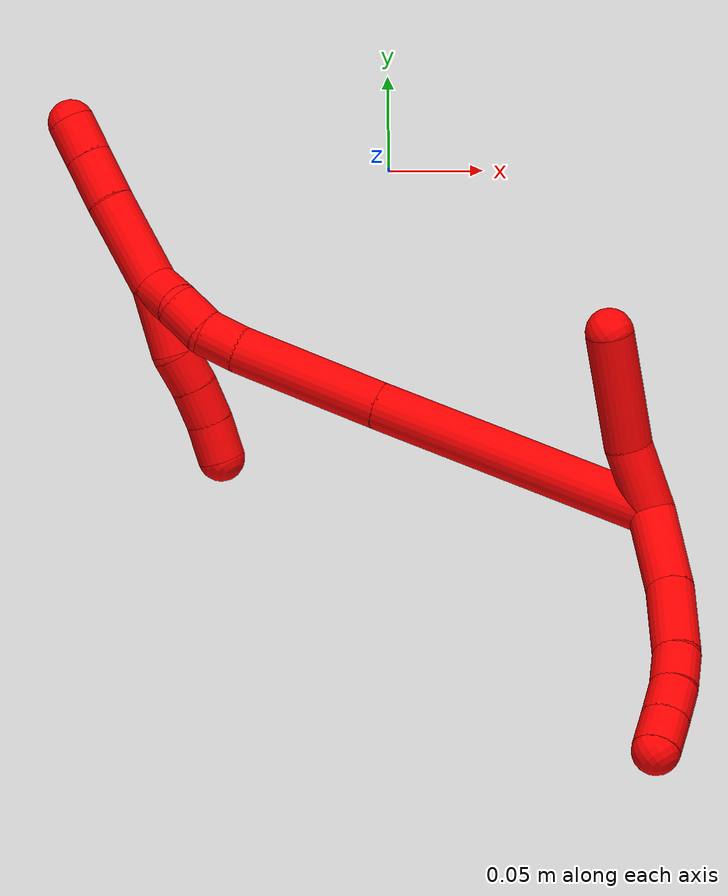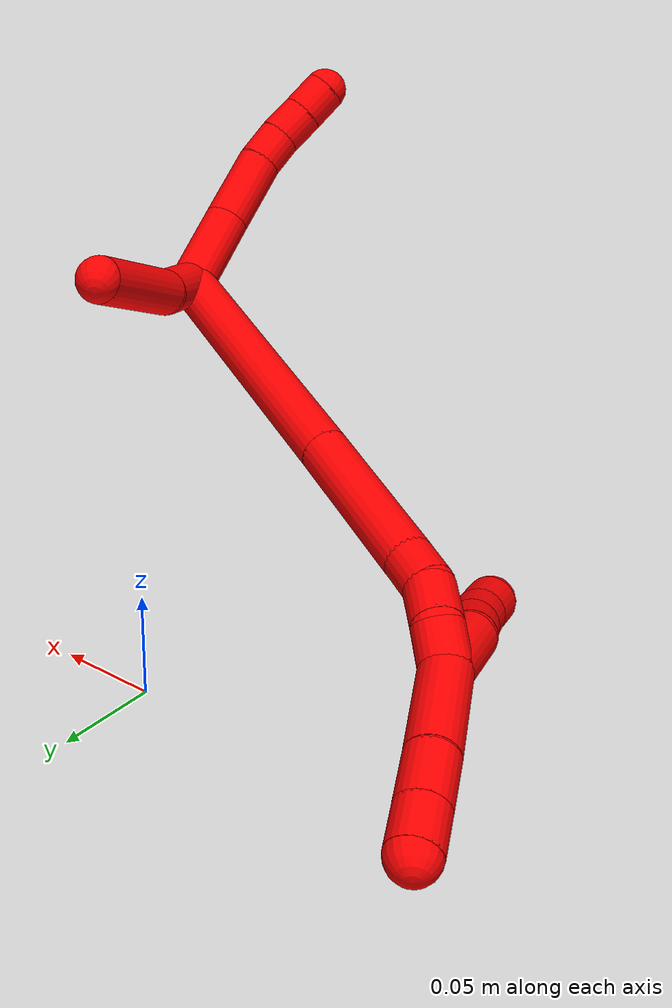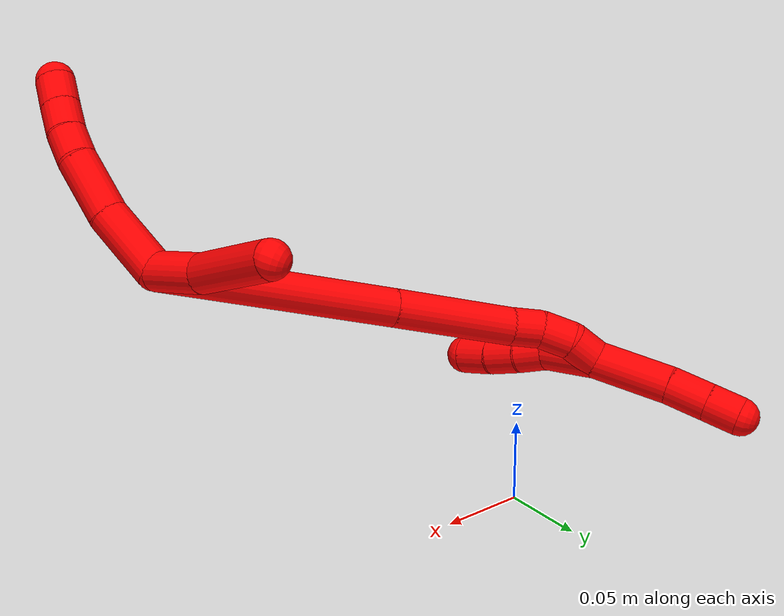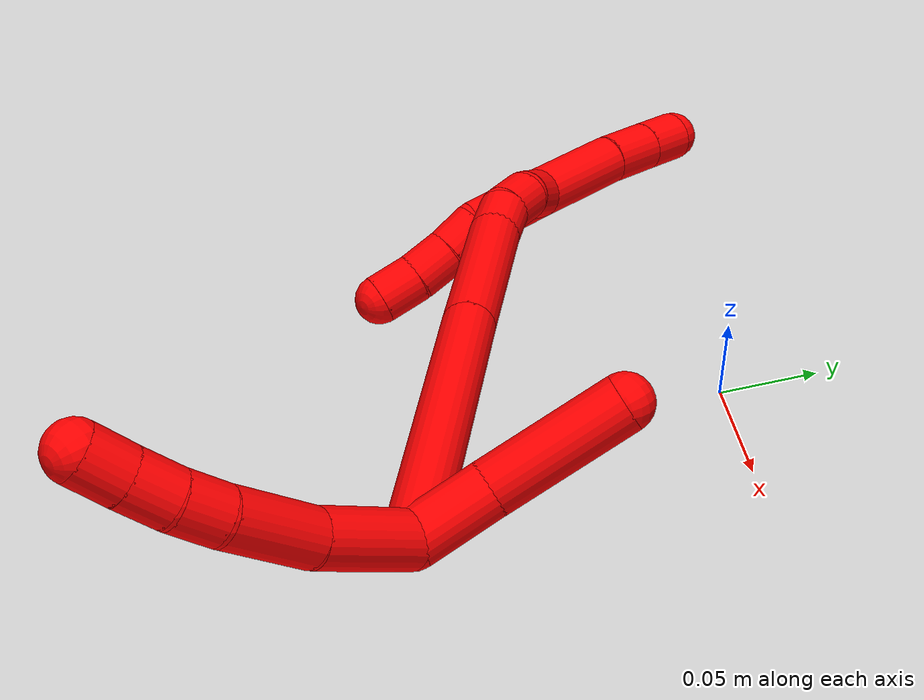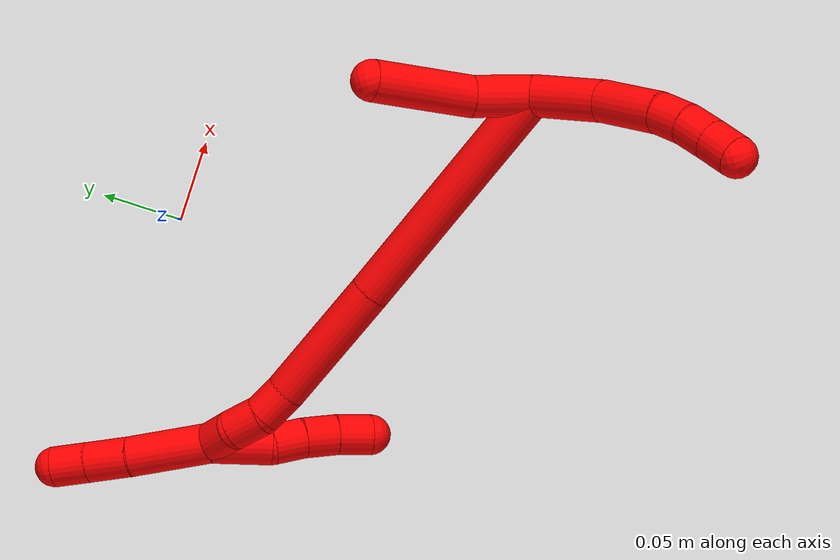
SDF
<sdf version="1.7">
 <world name="default">
  <model name="photoneo_s_sensor">
   <static>1</static>
   <pose>0 0 2 1.57079 1.57079 3.14159</pose>
   <link name="link">
    <inertial><mass>0.1</mass></inertial>
    <sensor name="sensor" type="depth">
     <update_rate>30</update_rate>
     <camera>
      <horizontal_fov>1.22</horizontal_fov>
      <image><width>1920</width><height>1200</height><format>B8G8R8</format></image>
      <clip><near>0.1</near><far>4</far></clip>
      <depth_camera><output>points</output></depth_camera>
     </camera>
     <plugin name="camera_plugin" filename="libgazebo_ros_depth_camera.so">
      <baseline>0.2</baseline>
      <alwaysOn>1</alwaysOn>
      <updateRate>0.0</updateRate>
      <cameraName>camera_ir</cameraName>
      <imageTopicName>/camera/color/image_raw</imageTopicName>
      <cameraInfoTopicName>/camera/color/camera_info</cameraInfoTopicName>
      <depthImageTopicName>/camera/depth/image_raw</depthImageTopicName>
      <depthImageCameraInfoTopicName>/camera/depth/camera_info</depthImageCameraInfoTopicName>
      <pointCloudTopicName>/camera/depth/points</pointCloudTopicName>
      <frameName>fr_optical</frameName>
      <pointCloudCutoff>0.1</pointCloudCutoff>
      <pointCloudCutoffMax>2.0</pointCloudCutoffMax>
      <distortionK1>0</distortionK1>
      <distortionK2>0</distortionK2>
      <distortionK3>0</distortionK3>
      <distortionT1>0</distortionT1>
      <distortionT2>0</distortionT2>
      <CxPrime>0</CxPrime>
      <Cx>0</Cx>
      <Cy>0</Cy>
      <focalLength>0</focalLength>
      <hackBaseline>0</hackBaseline>
     </plugin>
    </sensor>
   </link>
  </model>
  <model name="bin">
   <static>1</static>
   <link name="bottom">
    <collision name="collision-bottom">
     <pose>0 0 -0.01 0 -0 0</pose>
     <geometry><box><size>0.8 0.6 0.02</size></box></geometry>
     <surface>
      <friction><ode><mu>100</mu><mu2>100</mu2></ode></friction>
      <contact><collide_bitmask>65535</collide_bitmask></contact>
     </surface>
    </collision>
   </link>
   <link name="west_wall">
    <collision name="collision-west_wall">
     <pose>-0.41 0 0.1 0 -0 0</pose>
     <geometry><box><size>0.02 0.6 0.2</size></box></geometry>
     <surface>
      <friction><ode><mu>100</mu><mu2>100</mu2></ode></friction>
      <contact><collide_bitmask>65535</collide_bitmask></contact>
     </surface>
    </collision>
   </link>
   <link name="east_wall">
    <collision name="collision-east_wall">
     <pose>0.41 0 0.1 0 -0 0</pose>
     <geometry><box><size>0.02 0.6 0.2</size></box></geometry>
     <surface>
      <friction><ode><mu>100</mu><mu2>100</mu2></ode></friction>
      <contact><collide_bitmask>65535</collide_bitmask></contact>
     </surface>
    </collision>
   </link>
   <link name="south_wall">
    <collision name="collision-south_wall">
     <pose>0 -0.31 0.1 0 -0 0</pose>
     <geometry><box><size>0.8 0.02 0.2</size></box></geometry>
     <surface>
      <friction><ode><mu>100</mu><mu2>100</mu2></ode></friction>
      <contact><collide_bitmask>65535</collide_bitmask></contact>
     </surface>
    </collision>
   </link>
   <link name="north_wall">
    <collision name="collision-north_wall">
     <pose>0 0.31 0.1 0 -0 0</pose>
     <geometry><box><size>0.8 0.02 0.2</size></box></geometry>
     <surface>
      <friction><ode><mu>100</mu><mu2>100</mu2></ode></friction>
      <contact><collide_bitmask>65535</collide_bitmask></contact>
     </surface>
    </collision>
   </link>
  </model>
  <model name="2">
   <static>0</static>
   <link name="2">
    <collision name="collision-cylinder-e_1_2_8">
     <pose>0.004451 0.009796 0.021256 -0.431851 0.187938 -0.041339</pose>
     <geometry><cylinder><radius>0.0125</radius><length>0.047648</length></cylinder></geometry>
     <surface>
      <friction><ode><mu>1.16</mu><mu2>1.16</mu2><slip1>0</slip1><slip2>0</slip2></ode></friction>
      <contact><ode><kp>1e+06</kp><kd>1</kd><max_vel>0</max_vel><min_depth>0.001</min_depth></ode></contact>
     </surface>
    </collision>
    <visual name="visual-cylinder-e_1_2_8">
     <pose>0.004451 0.009796 0.021256 -0.431851 0.187938 -0.041339</pose>
     <geometry><cylinder><radius>0.0125</radius><length>0.047648</length></cylinder></geometry>
     <material><ambient>1 0 0 1</ambient></material>
    </visual>
    <collision name="collision-cylinder-e_2_8_9">
     <pose>0.014962 0.030632 0.059323 -0.581054 0.292666 -0.088076</pose>
     <geometry><cylinder><radius>0.0125</radius><length>0.042011</length></cylinder></geometry>
     <surface>
      <friction><ode><mu>1.16</mu><mu2>1.16</mu2><slip1>0</slip1><slip2>0</slip2></ode></friction>
      <contact><ode><kp>1e+06</kp><kd>1</kd><max_vel>0</max_vel><min_depth>0.001</min_depth></ode></contact>
     </surface>
    </collision>
    <visual name="visual-cylinder-e_2_8_9">
     <pose>0.014962 0.030632 0.059323 -0.581054 0.292666 -0.088076</pose>
     <geometry><cylinder><radius>0.0125</radius><length>0.042011</length></cylinder></geometry>
     <material><ambient>1 0 0 1</ambient></material>
    </visual>
    <collision name="collision-cylinder-e_3_9_10">
     <pose>0.023215 0.048253 0.083519 -0.727992 0.218092 -0.08337</pose>
     <geometry><cylinder><radius>0.0125</radius><length>0.020263</length></cylinder></geometry>
     <surface>
      <friction><ode><mu>1.16</mu><mu2>1.16</mu2><slip1>0</slip1><slip2>0</slip2></ode></friction>
      <contact><ode><kp>1e+06</kp><kd>1</kd><max_vel>0</max_vel><min_depth>0.001</min_depth></ode></contact>
     </surface>
    </collision>
    <visual name="visual-cylinder-e_3_9_10">
     <pose>0.023215 0.048253 0.083519 -0.727992 0.218092 -0.08337</pose>
     <geometry><cylinder><radius>0.0125</radius><length>0.020263</length></cylinder></geometry>
     <material><ambient>1 0 0 1</ambient></material>
    </visual>
    <collision name="collision-cylinder-e_4_10_11">
     <pose>0.027251 0.062351 0.097275 -0.867625 0.18503 -0.085906</pose>
     <geometry><cylinder><radius>0.0125</radius><length>0.02005</length></cylinder></geometry>
     <surface>
      <friction><ode><mu>1.16</mu><mu2>1.16</mu2><slip1>0</slip1><slip2>0</slip2></ode></friction>
      <contact><ode><kp>1e+06</kp><kd>1</kd><max_vel>0</max_vel><min_depth>0.001</min_depth></ode></contact>
     </surface>
    </collision>
    <visual name="visual-cylinder-e_4_10_11">
     <pose>0.027251 0.062351 0.097275 -0.867625 0.18503 -0.085906</pose>
     <geometry><cylinder><radius>0.0125</radius><length>0.02005</length></cylinder></geometry>
     <material><ambient>1 0 0 1</ambient></material>
    </visual>
    <collision name="collision-cylinder-e_5_11_6">
     <pose>0.031268 0.077457 0.109808 -0.888867 0.218681 -0.104459</pose>
     <geometry><cylinder><radius>0.0125</radius><length>0.020028</length></cylinder></geometry>
     <surface>
      <friction><ode><mu>1.16</mu><mu2>1.16</mu2><slip1>0</slip1><slip2>0</slip2></ode></friction>
      <contact><ode><kp>1e+06</kp><kd>1</kd><max_vel>0</max_vel><min_depth>0.001</min_depth></ode></contact>
     </surface>
    </collision>
    <visual name="visual-cylinder-e_5_11_6">
     <pose>0.031268 0.077457 0.109808 -0.888867 0.218681 -0.104459</pose>
     <geometry><cylinder><radius>0.0125</radius><length>0.020028</length></cylinder></geometry>
     <material><ambient>1 0 0 1</ambient></material>
    </visual>
    <collision name="collision-cylinder-e_1_2_12">
     <pose>0.008736 -0.001209 -0.016018 3.06629 0.498101 2.84749</pose>
     <geometry><cylinder><radius>0.0125</radius><length>0.03657</length></cylinder></geometry>
     <surface>
      <friction><ode><mu>1.16</mu><mu2>1.16</mu2><slip1>0</slip1><slip2>0</slip2></ode></friction>
      <contact><ode><kp>1e+06</kp><kd>1</kd><max_vel>0</max_vel><min_depth>0.001</min_depth></ode></contact>
     </surface>
    </collision>
    <visual name="visual-cylinder-e_1_2_12">
     <pose>0.008736 -0.001209 -0.016018 3.06629 0.498101 2.84749</pose>
     <geometry><cylinder><radius>0.0125</radius><length>0.03657</length></cylinder></geometry>
     <material><ambient>1 0 0 1</ambient></material>
    </visual>
    <collision name="collision-cylinder-e_2_12_5">
     <pose>0.039264 -0.006105 -0.05478 2.98085 0.757551 2.74222</pose>
     <geometry><cylinder><radius>0.0125</radius><length>0.06343</length></cylinder></geometry>
     <surface>
      <friction><ode><mu>1.16</mu><mu2>1.16</mu2><slip1>0</slip1><slip2>0</slip2></ode></friction>
      <contact><ode><kp>1e+06</kp><kd>1</kd><max_vel>0</max_vel><min_depth>0.001</min_depth></ode></contact>
     </surface>
    </collision>
    <visual name="visual-cylinder-e_2_12_5">
     <pose>0.039264 -0.006105 -0.05478 2.98085 0.757551 2.74222</pose>
     <geometry><cylinder><radius>0.0125</radius><length>0.06343</length></cylinder></geometry>
     <material><ambient>1 0 0 1</ambient></material>
    </visual>
    <collision name="collision-cylinder-e_1_2_13">
     <pose>-0.020335 0.037858 -0.064446 -2.61046 -0.265634 0.913173</pose>
     <geometry><cylinder><radius>0.0125</radius><length>0.154919</length></cylinder></geometry>
     <surface>
      <friction><ode><mu>1.16</mu><mu2>1.16</mu2><slip1>0</slip1><slip2>0</slip2></ode></friction>
      <contact><ode><kp>1e+06</kp><kd>1</kd><max_vel>0</max_vel><min_depth>0.001</min_depth></ode></contact>
     </surface>
    </collision>
    <visual name="visual-cylinder-e_1_2_13">
     <pose>-0.020335 0.037858 -0.064446 -2.61046 -0.265634 0.913173</pose>
     <geometry><cylinder><radius>0.0125</radius><length>0.154919</length></cylinder></geometry>
     <material><ambient>1 0 0 1</ambient></material>
    </visual>
    <collision name="collision-cylinder-e_2_13_14">
     <pose>-0.051206 0.095306 -0.163108 -2.62163 -0.261144 0.917156</pose>
     <geometry><cylinder><radius>0.0125</radius><length>0.081622</length></cylinder></geometry>
     <surface>
      <friction><ode><mu>1.16</mu><mu2>1.16</mu2><slip1>0</slip1><slip2>0</slip2></ode></friction>
      <contact><ode><kp>1e+06</kp><kd>1</kd><max_vel>0</max_vel><min_depth>0.001</min_depth></ode></contact>
     </surface>
    </collision>
    <visual name="visual-cylinder-e_2_13_14">
     <pose>-0.051206 0.095306 -0.163108 -2.62163 -0.261144 0.917156</pose>
     <geometry><cylinder><radius>0.0125</radius><length>0.081622</length></cylinder></geometry>
     <material><ambient>1 0 0 1</ambient></material>
    </visual>
    <collision name="collision-cylinder-e_3_14_15">
     <pose>-0.063221 0.119757 -0.206449 -2.65199 -0.141974 0.554618</pose>
     <geometry><cylinder><radius>0.0125</radius><length>0.020888</length></cylinder></geometry>
     <surface>
      <friction><ode><mu>1.16</mu><mu2>1.16</mu2><slip1>0</slip1><slip2>0</slip2></ode></friction>
      <contact><ode><kp>1e+06</kp><kd>1</kd><max_vel>0</max_vel><min_depth>0.001</min_depth></ode></contact>
     </surface>
    </collision>
    <visual name="visual-cylinder-e_3_14_15">
     <pose>-0.063221 0.119757 -0.206449 -2.65199 -0.141974 0.554618</pose>
     <geometry><cylinder><radius>0.0125</radius><length>0.020888</length></cylinder></geometry>
     <material><ambient>1 0 0 1</ambient></material>
    </visual>
    <collision name="collision-cylinder-e_4_15_16">
     <pose>-0.066332 0.126269 -0.22618 -2.98728 -0.15098 1.54889</pose>
     <geometry><cylinder><radius>0.0125</radius><length>0.021716</length></cylinder></geometry>
     <surface>
      <friction><ode><mu>1.16</mu><mu2>1.16</mu2><slip1>0</slip1><slip2>0</slip2></ode></friction>
      <contact><ode><kp>1e+06</kp><kd>1</kd><max_vel>0</max_vel><min_depth>0.001</min_depth></ode></contact>
     </surface>
    </collision>
    <visual name="visual-cylinder-e_4_15_16">
     <pose>-0.066332 0.126269 -0.22618 -2.98728 -0.15098 1.54889</pose>
     <geometry><cylinder><radius>0.0125</radius><length>0.021716</length></cylinder></geometry>
     <material><ambient>1 0 0 1</ambient></material>
    </visual>
    <collision name="collision-cylinder-e_5_16_1">
     <pose>-0.072819 0.128352 -0.246006 -3.09462 -0.484228 2.9519</pose>
     <geometry><cylinder><radius>0.0125</radius><length>0.020855</length></cylinder></geometry>
     <surface>
      <friction><ode><mu>1.16</mu><mu2>1.16</mu2><slip1>0</slip1><slip2>0</slip2></ode></friction>
      <contact><ode><kp>1e+06</kp><kd>1</kd><max_vel>0</max_vel><min_depth>0.001</min_depth></ode></contact>
     </surface>
    </collision>
    <visual name="visual-cylinder-e_5_16_1">
     <pose>-0.072819 0.128352 -0.246006 -3.09462 -0.484228 2.9519</pose>
     <geometry><cylinder><radius>0.0125</radius><length>0.020855</length></cylinder></geometry>
     <material><ambient>1 0 0 1</ambient></material>
    </visual>
    <collision name="collision-cylinder-e_1_1_17">
     <pose>-0.085833 0.131496 -0.238682 -0.162397 -0.453005 0.037504</pose>
     <geometry><cylinder><radius>0.0125</radius><length>0.037286</length></cylinder></geometry>
     <surface>
      <friction><ode><mu>1.16</mu><mu2>1.16</mu2><slip1>0</slip1><slip2>0</slip2></ode></friction>
      <contact><ode><kp>1e+06</kp><kd>1</kd><max_vel>0</max_vel><min_depth>0.001</min_depth></ode></contact>
     </surface>
    </collision>
    <visual name="visual-cylinder-e_1_1_17">
     <pose>-0.085833 0.131496 -0.238682 -0.162397 -0.453005 0.037504</pose>
     <geometry><cylinder><radius>0.0125</radius><length>0.037286</length></cylinder></geometry>
     <material><ambient>1 0 0 1</ambient></material>
    </visual>
    <collision name="collision-cylinder-e_2_17_18">
     <pose>-0.099132 0.132853 -0.21353 0.155846 -0.532828 -0.042611</pose>
     <geometry><cylinder><radius>0.0125</radius><length>0.020235</length></cylinder></geometry>
     <surface>
      <friction><ode><mu>1.16</mu><mu2>1.16</mu2><slip1>0</slip1><slip2>0</slip2></ode></friction>
      <contact><ode><kp>1e+06</kp><kd>1</kd><max_vel>0</max_vel><min_depth>0.001</min_depth></ode></contact>
     </surface>
    </collision>
    <visual name="visual-cylinder-e_2_17_18">
     <pose>-0.099132 0.132853 -0.21353 0.155846 -0.532828 -0.042611</pose>
     <geometry><cylinder><radius>0.0125</radius><length>0.020235</length></cylinder></geometry>
     <material><ambient>1 0 0 1</ambient></material>
    </visual>
    <collision name="collision-cylinder-e_3_18_19">
     <pose>-0.109905 0.131208 -0.196054 0.03303 -0.565767 -0.009602</pose>
     <geometry><cylinder><radius>0.0125</radius><length>0.021018</length></cylinder></geometry>
     <surface>
      <friction><ode><mu>1.16</mu><mu2>1.16</mu2><slip1>0</slip1><slip2>0</slip2></ode></friction>
      <contact><ode><kp>1e+06</kp><kd>1</kd><max_vel>0</max_vel><min_depth>0.001</min_depth></ode></contact>
     </surface>
    </collision>
    <visual name="visual-cylinder-e_3_18_19">
     <pose>-0.109905 0.131208 -0.196054 0.03303 -0.565767 -0.009602</pose>
     <geometry><cylinder><radius>0.0125</radius><length>0.021018</length></cylinder></geometry>
     <material><ambient>1 0 0 1</ambient></material>
    </visual>
    <collision name="collision-cylinder-e_4_19_4">
     <pose>-0.121065 0.131811 -0.178033 -0.09765 -0.540992 0.027097</pose>
     <geometry><cylinder><radius>0.0125</radius><length>0.02146</length></cylinder></geometry>
     <surface>
      <friction><ode><mu>1.16</mu><mu2>1.16</mu2><slip1>0</slip1><slip2>0</slip2></ode></friction>
      <contact><ode><kp>1e+06</kp><kd>1</kd><max_vel>0</max_vel><min_depth>0.001</min_depth></ode></contact>
     </surface>
    </collision>
    <visual name="visual-cylinder-e_4_19_4">
     <pose>-0.121065 0.131811 -0.178033 -0.09765 -0.540992 0.027097</pose>
     <geometry><cylinder><radius>0.0125</radius><length>0.02146</length></cylinder></geometry>
     <material><ambient>1 0 0 1</ambient></material>
    </visual>
    <collision name="collision-cylinder-e_1_1_20">
     <pose>-0.07478 0.127458 -0.280551 3.08923 0.113611 2.27848</pose>
     <geometry><cylinder><radius>0.0125</radius><length>0.051052</length></cylinder></geometry>
     <surface>
      <friction><ode><mu>1.16</mu><mu2>1.16</mu2><slip1>0</slip1><slip2>0</slip2></ode></friction>
      <contact><ode><kp>1e+06</kp><kd>1</kd><max_vel>0</max_vel><min_depth>0.001</min_depth></ode></contact>
     </surface>
    </collision>
    <visual name="visual-cylinder-e_1_1_20">
     <pose>-0.07478 0.127458 -0.280551 3.08923 0.113611 2.27848</pose>
     <geometry><cylinder><radius>0.0125</radius><length>0.051052</length></cylinder></geometry>
     <material><ambient>1 0 0 1</ambient></material>
    </visual>
    <collision name="collision-cylinder-e_2_20_21">
     <pose>-0.071154 0.124712 -0.319197 3.03544 0.054588 0.949398</pose>
     <geometry><cylinder><radius>0.0125</radius><length>0.026829</length></cylinder></geometry>
     <surface>
      <friction><ode><mu>1.16</mu><mu2>1.16</mu2><slip1>0</slip1><slip2>0</slip2></ode></friction>
      <contact><ode><kp>1e+06</kp><kd>1</kd><max_vel>0</max_vel><min_depth>0.001</min_depth></ode></contact>
     </surface>
    </collision>
    <visual name="visual-cylinder-e_2_20_21">
     <pose>-0.071154 0.124712 -0.319197 3.03544 0.054588 0.949398</pose>
     <geometry><cylinder><radius>0.0125</radius><length>0.026829</length></cylinder></geometry>
     <material><ambient>1 0 0 1</ambient></material>
    </visual>
    <collision name="collision-cylinder-e_3_21_3">
     <pose>-0.069823 0.122063 -0.34349 3.03004 0.054158 0.903332</pose>
     <geometry><cylinder><radius>0.0125</radius><length>0.022119</length></cylinder></geometry>
     <surface>
      <friction><ode><mu>1.16</mu><mu2>1.16</mu2><slip1>0</slip1><slip2>0</slip2></ode></friction>
      <contact><ode><kp>1e+06</kp><kd>1</kd><max_vel>0</max_vel><min_depth>0.001</min_depth></ode></contact>
     </surface>
    </collision>
    <visual name="visual-cylinder-e_3_21_3">
     <pose>-0.069823 0.122063 -0.34349 3.03004 0.054158 0.903332</pose>
     <geometry><cylinder><radius>0.0125</radius><length>0.022119</length></cylinder></geometry>
     <material><ambient>1 0 0 1</ambient></material>
    </visual>
    <collision name="collision-sphere-3">
     <pose>-0.069225 0.120834 -0.354465 0 -0 0</pose>
     <geometry><sphere><radius>0.0125</radius></sphere></geometry>
     <surface>
      <friction><ode><mu>1.16</mu><mu2>1.16</mu2><slip1>0</slip1><slip2>0</slip2></ode></friction>
      <contact><ode><kp>1e+06</kp><kd>1</kd><max_vel>0</max_vel><min_depth>0.001</min_depth></ode></contact>
     </surface>
    </collision>
    <visual name="visual-sphere-3">
     <pose>-0.069225 0.120834 -0.354465 0 -0 0</pose>
     <geometry><sphere><radius>0.0125</radius></sphere></geometry>
     <material><ambient>1 0 0 1</ambient></material>
    </visual>
    <collision name="collision-sphere-21">
     <pose>-0.070422 0.123293 -0.332516 0 -0 0</pose>
     <geometry><sphere><radius>0.0125</radius></sphere></geometry>
     <surface>
      <friction><ode><mu>1.16</mu><mu2>1.16</mu2><slip1>0</slip1><slip2>0</slip2></ode></friction>
      <contact><ode><kp>1e+06</kp><kd>1</kd><max_vel>0</max_vel><min_depth>0.001</min_depth></ode></contact>
     </surface>
    </collision>
    <visual name="visual-sphere-21">
     <pose>-0.070422 0.123293 -0.332516 0 -0 0</pose>
     <geometry><sphere><radius>0.0125</radius></sphere></geometry>
     <material><ambient>1 0 0 1</ambient></material>
    </visual>
    <collision name="collision-sphere-20">
     <pose>-0.071886 0.126131 -0.305878 0 -0 0</pose>
     <geometry><sphere><radius>0.0125</radius></sphere></geometry>
     <surface>
      <friction><ode><mu>1.16</mu><mu2>1.16</mu2><slip1>0</slip1><slip2>0</slip2></ode></friction>
      <contact><ode><kp>1e+06</kp><kd>1</kd><max_vel>0</max_vel><min_depth>0.001</min_depth></ode></contact>
     </surface>
    </collision>
    <visual name="visual-sphere-20">
     <pose>-0.071886 0.126131 -0.305878 0 -0 0</pose>
     <geometry><sphere><radius>0.0125</radius></sphere></geometry>
     <material><ambient>1 0 0 1</ambient></material>
    </visual>
    <collision name="collision-sphere-4">
     <pose>-0.12659 0.132708 -0.168879 0 -0 0</pose>
     <geometry><sphere><radius>0.0125</radius></sphere></geometry>
     <surface>
      <friction><ode><mu>1.16</mu><mu2>1.16</mu2><slip1>0</slip1><slip2>0</slip2></ode></friction>
      <contact><ode><kp>1e+06</kp><kd>1</kd><max_vel>0</max_vel><min_depth>0.001</min_depth></ode></contact>
     </surface>
    </collision>
    <visual name="visual-sphere-4">
     <pose>-0.12659 0.132708 -0.168879 0 -0 0</pose>
     <geometry><sphere><radius>0.0125</radius></sphere></geometry>
     <material><ambient>1 0 0 1</ambient></material>
    </visual>
    <collision name="collision-sphere-6">
     <pose>0.033441 0.085046 0.11597 0 -0 0</pose>
     <geometry><sphere><radius>0.0125</radius></sphere></geometry>
     <surface>
      <friction><ode><mu>1.16</mu><mu2>1.16</mu2><slip1>0</slip1><slip2>0</slip2></ode></friction>
      <contact><ode><kp>1e+06</kp><kd>1</kd><max_vel>0</max_vel><min_depth>0.001</min_depth></ode></contact>
     </surface>
    </collision>
    <visual name="visual-sphere-6">
     <pose>0.033441 0.085046 0.11597 0 -0 0</pose>
     <geometry><sphere><radius>0.0125</radius></sphere></geometry>
     <material><ambient>1 0 0 1</ambient></material>
    </visual>
    <collision name="collision-sphere-11">
     <pose>0.029096 0.069868 0.103647 0 -0 0</pose>
     <geometry><sphere><radius>0.0125</radius></sphere></geometry>
     <surface>
      <friction><ode><mu>1.16</mu><mu2>1.16</mu2><slip1>0</slip1><slip2>0</slip2></ode></friction>
      <contact><ode><kp>1e+06</kp><kd>1</kd><max_vel>0</max_vel><min_depth>0.001</min_depth></ode></contact>
     </surface>
    </collision>
    <visual name="visual-sphere-11">
     <pose>0.029096 0.069868 0.103647 0 -0 0</pose>
     <geometry><sphere><radius>0.0125</radius></sphere></geometry>
     <material><ambient>1 0 0 1</ambient></material>
    </visual>
    <collision name="collision-sphere-10">
     <pose>0.025407 0.054834 0.090903 0 -0 0</pose>
     <geometry><sphere><radius>0.0125</radius></sphere></geometry>
     <surface>
      <friction><ode><mu>1.16</mu><mu2>1.16</mu2><slip1>0</slip1><slip2>0</slip2></ode></friction>
      <contact><ode><kp>1e+06</kp><kd>1</kd><max_vel>0</max_vel><min_depth>0.001</min_depth></ode></contact>
     </surface>
    </collision>
    <visual name="visual-sphere-10">
     <pose>0.025407 0.054834 0.090903 0 -0 0</pose>
     <geometry><sphere><radius>0.0125</radius></sphere></geometry>
     <material><ambient>1 0 0 1</ambient></material>
    </visual>
    <collision name="collision-sphere-9">
     <pose>0.021023 0.041672 0.076135 0 -0 0</pose>
     <geometry><sphere><radius>0.0125</radius></sphere></geometry>
     <surface>
      <friction><ode><mu>1.16</mu><mu2>1.16</mu2><slip1>0</slip1><slip2>0</slip2></ode></friction>
      <contact><ode><kp>1e+06</kp><kd>1</kd><max_vel>0</max_vel><min_depth>0.001</min_depth></ode></contact>
     </surface>
    </collision>
    <visual name="visual-sphere-9">
     <pose>0.021023 0.041672 0.076135 0 -0 0</pose>
     <geometry><sphere><radius>0.0125</radius></sphere></geometry>
     <material><ambient>1 0 0 1</ambient></material>
    </visual>
    <collision name="collision-sphere-2">
     <geometry><sphere><radius>0.0125</radius></sphere></geometry>
     <surface>
      <friction><ode><mu>1.16</mu><mu2>1.16</mu2><slip1>0</slip1><slip2>0</slip2></ode></friction>
      <contact><ode><kp>1e+06</kp><kd>1</kd><max_vel>0</max_vel><min_depth>0.001</min_depth></ode></contact>
     </surface>
    </collision>
    <visual name="visual-sphere-2">
     <geometry><sphere><radius>0.0125</radius></sphere></geometry>
     <material><ambient>1 0 0 1</ambient></material>
    </visual>
    <collision name="collision-sphere-19">
     <pose>-0.115539 0.130915 -0.187187 0 -0 0</pose>
     <geometry><sphere><radius>0.0125</radius></sphere></geometry>
     <surface>
      <friction><ode><mu>1.16</mu><mu2>1.16</mu2><slip1>0</slip1><slip2>0</slip2></ode></friction>
      <contact><ode><kp>1e+06</kp><kd>1</kd><max_vel>0</max_vel><min_depth>0.001</min_depth></ode></contact>
     </surface>
    </collision>
    <visual name="visual-sphere-19">
     <pose>-0.115539 0.130915 -0.187187 0 -0 0</pose>
     <geometry><sphere><radius>0.0125</radius></sphere></geometry>
     <material><ambient>1 0 0 1</ambient></material>
    </visual>
    <collision name="collision-sphere-8">
     <pose>0.008902 0.019592 0.042511 0 -0 0</pose>
     <geometry><sphere><radius>0.0125</radius></sphere></geometry>
     <surface>
      <friction><ode><mu>1.16</mu><mu2>1.16</mu2><slip1>0</slip1><slip2>0</slip2></ode></friction>
      <contact><ode><kp>1e+06</kp><kd>1</kd><max_vel>0</max_vel><min_depth>0.001</min_depth></ode></contact>
     </surface>
    </collision>
    <visual name="visual-sphere-8">
     <pose>0.008902 0.019592 0.042511 0 -0 0</pose>
     <geometry><sphere><radius>0.0125</radius></sphere></geometry>
     <material><ambient>1 0 0 1</ambient></material>
    </visual>
    <collision name="collision-sphere-12">
     <pose>0.017472 -0.002417 -0.032035 0 -0 0</pose>
     <geometry><sphere><radius>0.0125</radius></sphere></geometry>
     <surface>
      <friction><ode><mu>1.16</mu><mu2>1.16</mu2><slip1>0</slip1><slip2>0</slip2></ode></friction>
      <contact><ode><kp>1e+06</kp><kd>1</kd><max_vel>0</max_vel><min_depth>0.001</min_depth></ode></contact>
     </surface>
    </collision>
    <visual name="visual-sphere-12">
     <pose>0.017472 -0.002417 -0.032035 0 -0 0</pose>
     <geometry><sphere><radius>0.0125</radius></sphere></geometry>
     <material><ambient>1 0 0 1</ambient></material>
    </visual>
    <collision name="collision-sphere-5">
     <pose>0.061057 -0.009793 -0.077525 0 -0 0</pose>
     <geometry><sphere><radius>0.0125</radius></sphere></geometry>
     <surface>
      <friction><ode><mu>1.16</mu><mu2>1.16</mu2><slip1>0</slip1><slip2>0</slip2></ode></friction>
      <contact><ode><kp>1e+06</kp><kd>1</kd><max_vel>0</max_vel><min_depth>0.001</min_depth></ode></contact>
     </surface>
    </collision>
    <visual name="visual-sphere-5">
     <pose>0.061057 -0.009793 -0.077525 0 -0 0</pose>
     <geometry><sphere><radius>0.0125</radius></sphere></geometry>
     <material><ambient>1 0 0 1</ambient></material>
    </visual>
    <collision name="collision-sphere-13">
     <pose>-0.04067 0.075716 -0.128891 0 -0 0</pose>
     <geometry><sphere><radius>0.0125</radius></sphere></geometry>
     <surface>
      <friction><ode><mu>1.16</mu><mu2>1.16</mu2><slip1>0</slip1><slip2>0</slip2></ode></friction>
      <contact><ode><kp>1e+06</kp><kd>1</kd><max_vel>0</max_vel><min_depth>0.001</min_depth></ode></contact>
     </surface>
    </collision>
    <visual name="visual-sphere-13">
     <pose>-0.04067 0.075716 -0.128891 0 -0 0</pose>
     <geometry><sphere><radius>0.0125</radius></sphere></geometry>
     <material><ambient>1 0 0 1</ambient></material>
    </visual>
    <collision name="collision-sphere-14">
     <pose>-0.061743 0.114895 -0.197325 0 -0 0</pose>
     <geometry><sphere><radius>0.0125</radius></sphere></geometry>
     <surface>
      <friction><ode><mu>1.16</mu><mu2>1.16</mu2><slip1>0</slip1><slip2>0</slip2></ode></friction>
      <contact><ode><kp>1e+06</kp><kd>1</kd><max_vel>0</max_vel><min_depth>0.001</min_depth></ode></contact>
     </surface>
    </collision>
    <visual name="visual-sphere-14">
     <pose>-0.061743 0.114895 -0.197325 0 -0 0</pose>
     <geometry><sphere><radius>0.0125</radius></sphere></geometry>
     <material><ambient>1 0 0 1</ambient></material>
    </visual>
    <collision name="collision-sphere-15">
     <pose>-0.064699 0.124619 -0.215573 0 -0 0</pose>
     <geometry><sphere><radius>0.0125</radius></sphere></geometry>
     <surface>
      <friction><ode><mu>1.16</mu><mu2>1.16</mu2><slip1>0</slip1><slip2>0</slip2></ode></friction>
      <contact><ode><kp>1e+06</kp><kd>1</kd><max_vel>0</max_vel><min_depth>0.001</min_depth></ode></contact>
     </surface>
    </collision>
    <visual name="visual-sphere-15">
     <pose>-0.064699 0.124619 -0.215573 0 -0 0</pose>
     <geometry><sphere><radius>0.0125</radius></sphere></geometry>
     <material><ambient>1 0 0 1</ambient></material>
    </visual>
    <collision name="collision-sphere-16">
     <pose>-0.067965 0.127919 -0.236787 0 -0 0</pose>
     <geometry><sphere><radius>0.0125</radius></sphere></geometry>
     <surface>
      <friction><ode><mu>1.16</mu><mu2>1.16</mu2><slip1>0</slip1><slip2>0</slip2></ode></friction>
      <contact><ode><kp>1e+06</kp><kd>1</kd><max_vel>0</max_vel><min_depth>0.001</min_depth></ode></contact>
     </surface>
    </collision>
    <visual name="visual-sphere-16">
     <pose>-0.067965 0.127919 -0.236787 0 -0 0</pose>
     <geometry><sphere><radius>0.0125</radius></sphere></geometry>
     <material><ambient>1 0 0 1</ambient></material>
    </visual>
    <collision name="collision-sphere-1">
     <pose>-0.077673 0.128786 -0.255224 0 -0 0</pose>
     <geometry><sphere><radius>0.0125</radius></sphere></geometry>
     <surface>
      <friction><ode><mu>1.16</mu><mu2>1.16</mu2><slip1>0</slip1><slip2>0</slip2></ode></friction>
      <contact><ode><kp>1e+06</kp><kd>1</kd><max_vel>0</max_vel><min_depth>0.001</min_depth></ode></contact>
     </surface>
    </collision>
    <visual name="visual-sphere-1">
     <pose>-0.077673 0.128786 -0.255224 0 -0 0</pose>
     <geometry><sphere><radius>0.0125</radius></sphere></geometry>
     <material><ambient>1 0 0 1</ambient></material>
    </visual>
    <collision name="collision-sphere-18">
     <pose>-0.104271 0.131501 -0.204921 0 -0 0</pose>
     <geometry><sphere><radius>0.0125</radius></sphere></geometry>
     <surface>
      <friction><ode><mu>1.16</mu><mu2>1.16</mu2><slip1>0</slip1><slip2>0</slip2></ode></friction>
      <contact><ode><kp>1e+06</kp><kd>1</kd><max_vel>0</max_vel><min_depth>0.001</min_depth></ode></contact>
     </surface>
    </collision>
    <visual name="visual-sphere-18">
     <pose>-0.104271 0.131501 -0.204921 0 -0 0</pose>
     <geometry><sphere><radius>0.0125</radius></sphere></geometry>
     <material><ambient>1 0 0 1</ambient></material>
    </visual>
    <collision name="collision-sphere-17">
     <pose>-0.093992 0.134206 -0.22214 0 -0 0</pose>
     <geometry><sphere><radius>0.0125</radius></sphere></geometry>
     <surface>
      <friction><ode><mu>1.16</mu><mu2>1.16</mu2><slip1>0</slip1><slip2>0</slip2></ode></friction>
      <contact><ode><kp>1e+06</kp><kd>1</kd><max_vel>0</max_vel><min_depth>0.001</min_depth></ode></contact>
     </surface>
    </collision>
    <visual name="visual-sphere-17">
     <pose>-0.093992 0.134206 -0.22214 0 -0 0</pose>
     <geometry><sphere><radius>0.0125</radius></sphere></geometry>
     <material><ambient>1 0 0 1</ambient></material>
    </visual>
    <inertial>
     <pose>-0.031602 0.069862 -0.112014 0 -0 0</pose>
     <mass>0.75</mass>
     <inertia>
      <ixx>0.00052</ixx>
      <ixy>0</ixy>
      <ixz>0</ixz>
      <iyy>0.000227</iyy>
      <iyz>0</iyz>
      <izz>-0.000129</izz>
     </inertia>
    </inertial>
   </link>
   <pose>0.132111 -0.180097 0.121844 0.947157 -1.11255 1.15241</pose>
  </model>
 </world>
</sdf>
